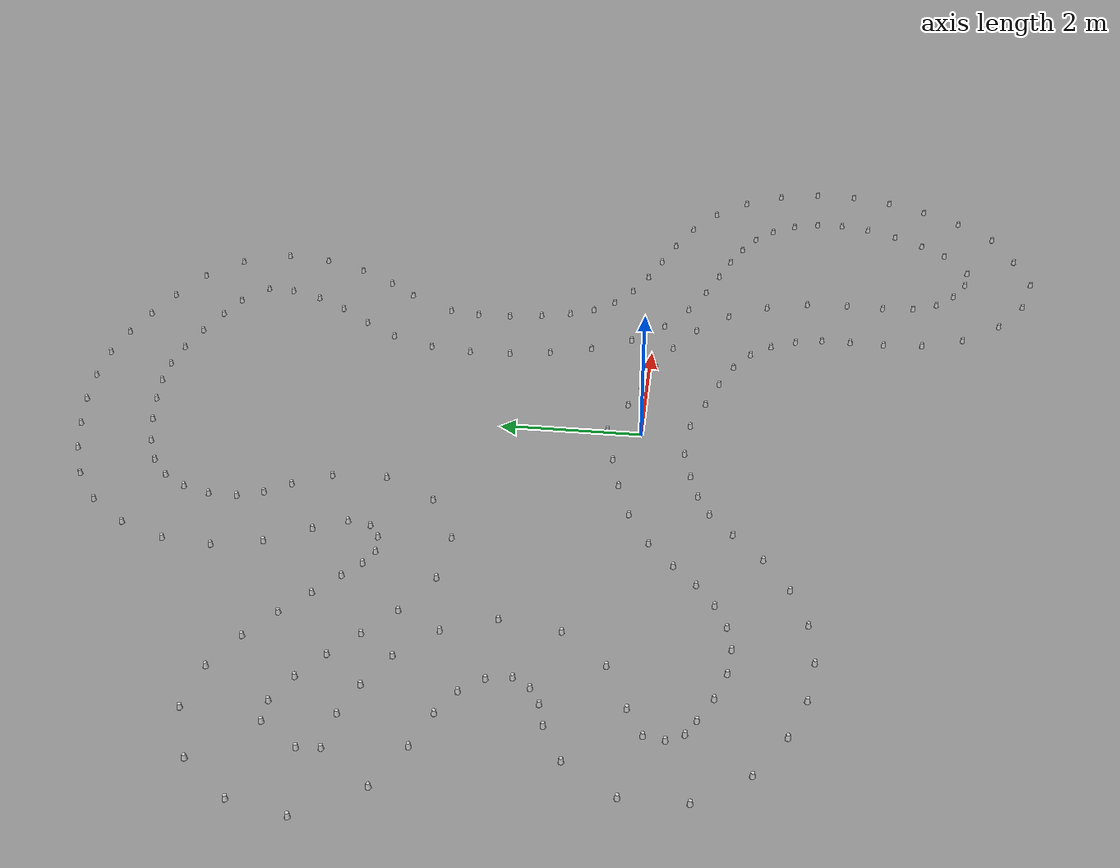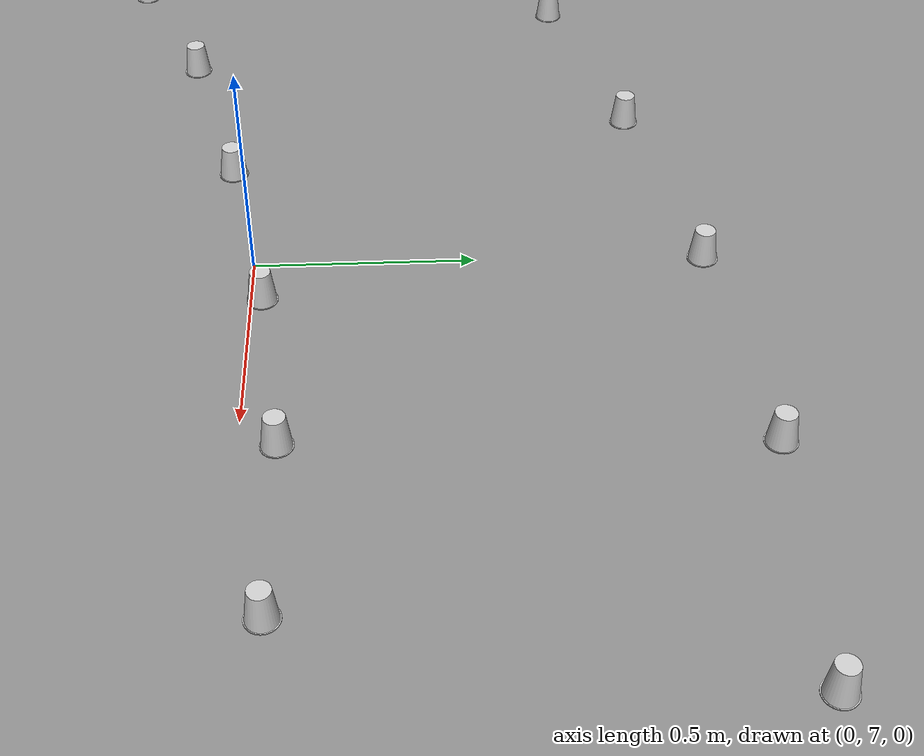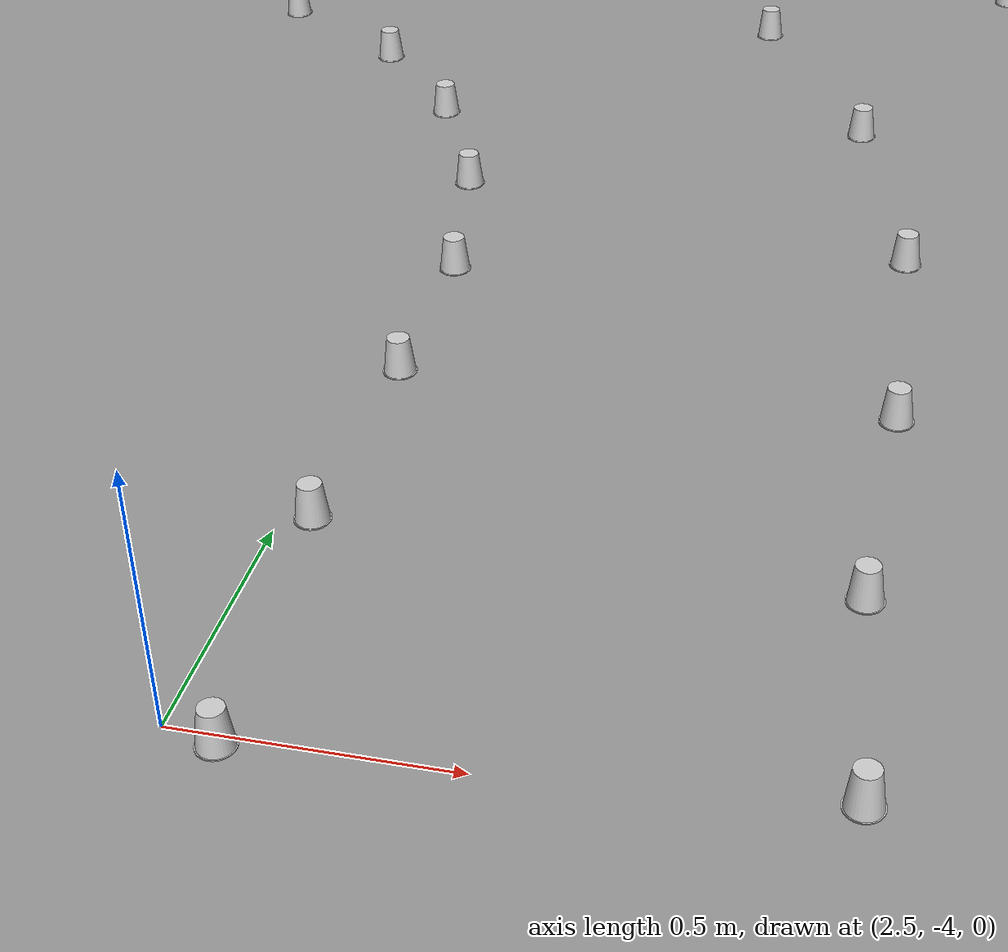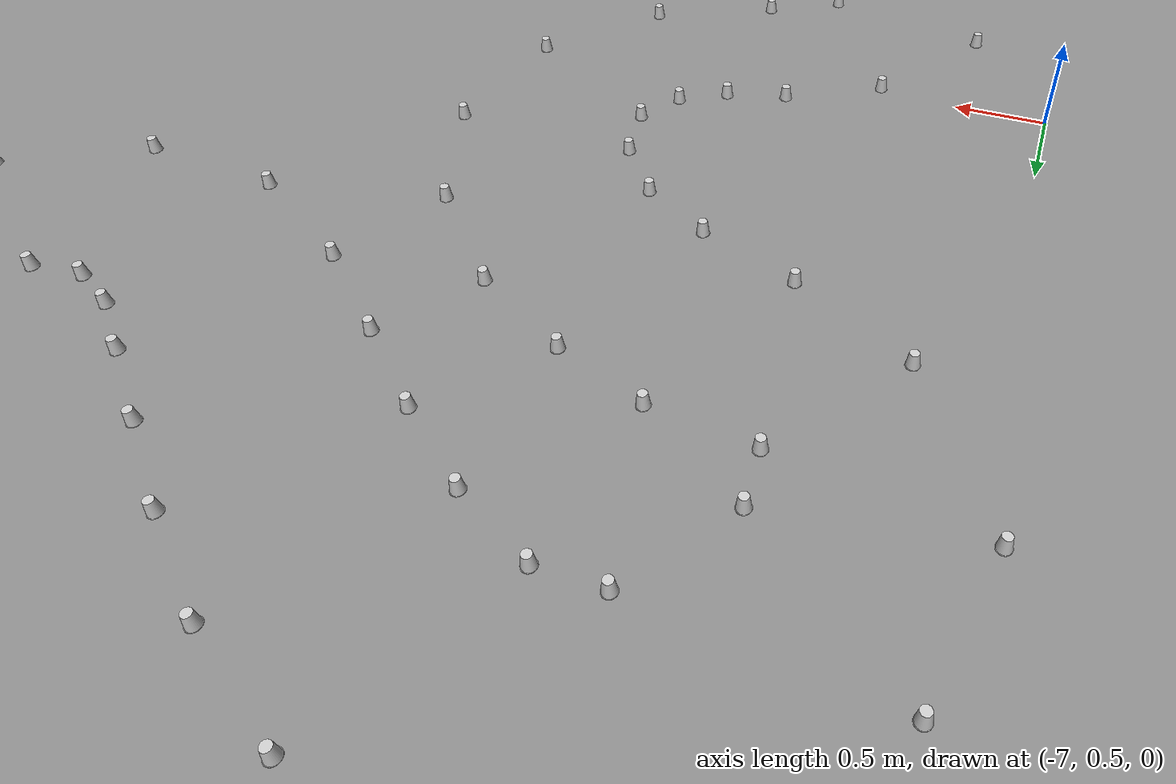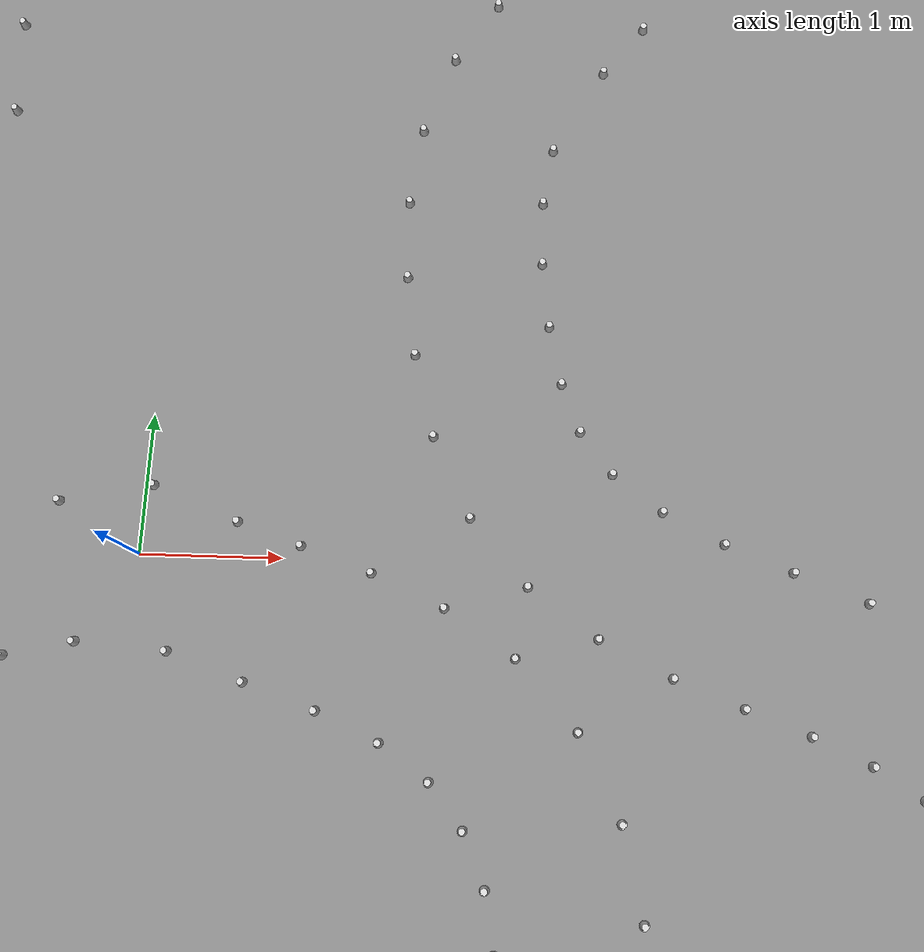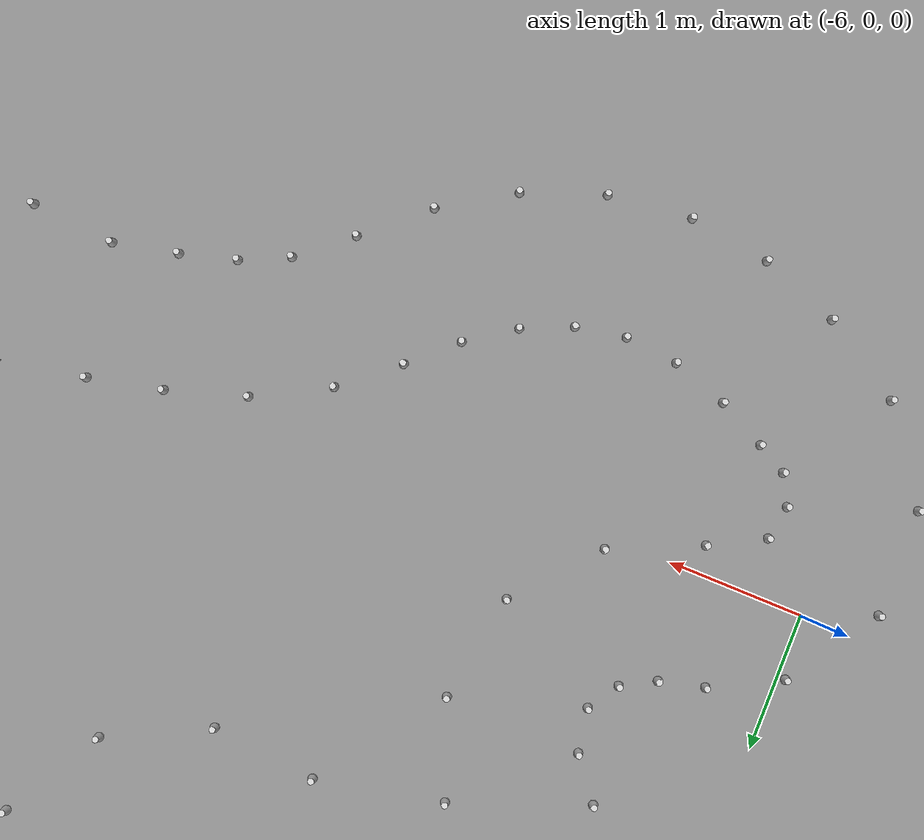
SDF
<?xml version='1.0' encoding='UTF-8'?>
<sdf version="1.4">
  <model name="some track">
    <include>
      <uri>model://cone_yellow</uri>
      <pose>0.2520217819571229 -0.6624473899788152 0 0 0 0</pose>
      <name>cone_right_0</name>
    </include>
    <include>
      <uri>model://cone_yellow</uri>
      <pose>0.7920641957585527 -0.8517499490400444 0 0 0 0</pose>
      <name>cone_right_1</name>
    </include>
    <include>
      <uri>model://cone_yellow</uri>
      <pose>1.299191915145787 -1.0262613820111453 0 0 0 0</pose>
      <name>cone_right_2</name>
    </include>
    <include>
      <uri>model://cone_yellow</uri>
      <pose>1.7433202364652647 -1.222958055781142 0 0 0 0</pose>
      <name>cone_right_3</name>
    </include>
    <include>
      <uri>model://cone_yellow</uri>
      <pose>2.093068507529238 -1.4657872968968744 0 0 0 0</pose>
      <name>cone_right_4</name>
    </include>
    <include>
      <uri>model://cone_yellow</uri>
      <pose>2.3342759258822703 -1.7679930261638694 0 0 0 0</pose>
      <name>cone_right_5</name>
    </include>
    <include>
      <uri>model://cone_yellow</uri>
      <pose>2.4956350962559144 -2.1334000531033883 0 0 0 0</pose>
      <name>cone_right_6</name>
    </include>
    <include>
      <uri>model://cone_yellow</uri>
      <pose>2.5694315664643734 -2.5307443159718352 0 0 0 0</pose>
      <name>cone_right_7</name>
    </include>
    <include>
      <uri>model://cone_yellow</uri>
      <pose>2.5705801043149012 -2.9509575145704634 0 0 0 0</pose>
      <name>cone_right_8</name>
    </include>
    <include>
      <uri>model://cone_yellow</uri>
      <pose>2.557541530749565 -3.4488771724624128 0 0 0 0</pose>
      <name>cone_right_9</name>
    </include>
    <include>
      <uri>model://cone_yellow</uri>
      <pose>2.599263658524519 -4.021047269651951 0 0 0 0</pose>
      <name>cone_right_10</name>
    </include>
    <include>
      <uri>model://cone_yellow</uri>
      <pose>2.7983585120659815 -4.640167343882475 0 0 0 0</pose>
      <name>cone_right_11</name>
    </include>
    <include>
      <uri>model://cone_yellow</uri>
      <pose>3.2318226153511267 -5.219282504682011 0 0 0 0</pose>
      <name>cone_right_12</name>
    </include>
    <include>
      <uri>model://cone_yellow</uri>
      <pose>3.812850258351517 -5.629514881877997 0 0 0 0</pose>
      <name>cone_right_13</name>
    </include>
    <include>
      <uri>model://cone_yellow</uri>
      <pose>4.477135023608905 -5.825263475074449 0 0 0 0</pose>
      <name>cone_right_14</name>
    </include>
    <include>
      <uri>model://cone_yellow</uri>
      <pose>5.796108552447984 -5.339663908365842 0 0 0 0</pose>
      <name>cone_right_15</name>
    </include>
    <include>
      <uri>model://cone_yellow</uri>
      <pose>6.24854381011139 -4.823935224112341 0 0 0 0</pose>
      <name>cone_right_16</name>
    </include>
    <include>
      <uri>model://cone_yellow</uri>
      <pose>6.585228923449826 -4.276536982010912 0 0 0 0</pose>
      <name>cone_right_17</name>
    </include>
    <include>
      <uri>model://cone_yellow</uri>
      <pose>6.829403236017571 -3.711334931807733 0 0 0 0</pose>
      <name>cone_right_18</name>
    </include>
    <include>
      <uri>model://cone_yellow</uri>
      <pose>6.973064333869849 -3.1179742687386343 0 0 0 0</pose>
      <name>cone_right_19</name>
    </include>
    <include>
      <uri>model://cone_yellow</uri>
      <pose>6.992263410201457 -2.5016879120651843 0 0 0 0</pose>
      <name>cone_right_20</name>
    </include>
    <include>
      <uri>model://cone_yellow</uri>
      <pose>6.860998882554905 -1.8780927560607965 0 0 0 0</pose>
      <name>cone_right_21</name>
    </include>
    <include>
      <uri>model://cone_yellow</uri>
      <pose>6.576949663200294 -1.2961196481319779 0 0 0 0</pose>
      <name>cone_right_22</name>
    </include>
    <include>
      <uri>model://cone_yellow</uri>
      <pose>6.154562059435189 -0.8044108175015665 0 0 0 0</pose>
      <name>cone_right_23</name>
    </include>
    <include>
      <uri>model://cone_yellow</uri>
      <pose>5.631007172851125 -0.4348953182741404 0 0 0 0</pose>
      <name>cone_right_24</name>
    </include>
    <include>
      <uri>model://cone_yellow</uri>
      <pose>5.087319439940173 -0.1768135656190289 0 0 0 0</pose>
      <name>cone_right_25</name>
    </include>
    <include>
      <uri>model://cone_yellow</uri>
      <pose>4.568368015731414 0.01836215299985644 0 0 0 0</pose>
      <name>cone_right_26</name>
    </include>
    <include>
      <uri>model://cone_yellow</uri>
      <pose>4.088211933029131 0.20159445764849143 0 0 0 0</pose>
      <name>cone_right_27</name>
    </include>
    <include>
      <uri>model://cone_yellow</uri>
      <pose>3.6540359549768677 0.41498832790473933 0 0 0 0</pose>
      <name>cone_right_28</name>
    </include>
    <include>
      <uri>model://cone_yellow</uri>
      <pose>3.2959722058506964 0.6753324073915663 0 0 0 0</pose>
      <name>cone_right_29</name>
    </include>
    <include>
      <uri>model://cone_yellow</uri>
      <pose>3.059899477813197 0.9769999139014358 0 0 0 0</pose>
      <name>cone_right_30</name>
    </include>
    <include>
      <uri>model://cone_yellow</uri>
      <pose>2.9179184346572002 1.3289481860374015 0 0 0 0</pose>
      <name>cone_right_31</name>
    </include>
    <include>
      <uri>model://cone_yellow</uri>
      <pose>2.8171298548565704 1.7610974588574992 0 0 0 0</pose>
      <name>cone_right_32</name>
    </include>
    <include>
      <uri>model://cone_yellow</uri>
      <pose>2.752486098595374 2.24906895680662 0 0 0 0</pose>
      <name>cone_right_33</name>
    </include>
    <include>
      <uri>model://cone_yellow</uri>
      <pose>2.7441923727782984 2.732648959672725 0 0 0 0</pose>
      <name>cone_right_34</name>
    </include>
    <include>
      <uri>model://cone_yellow</uri>
      <pose>2.8094911777625695 3.169121524910929 0 0 0 0</pose>
      <name>cone_right_35</name>
    </include>
    <include>
      <uri>model://cone_yellow</uri>
      <pose>3.1794053025569933 3.8375906705280376 0 0 0 0</pose>
      <name>cone_right_36</name>
    </include>
    <include>
      <uri>model://cone_yellow</uri>
      <pose>3.4831603157119084 4.2298579298097465 0 0 0 0</pose>
      <name>cone_right_37</name>
    </include>
    <include>
      <uri>model://cone_yellow</uri>
      <pose>3.809205175074379 4.765881341581956 0 0 0 0</pose>
      <name>cone_right_38</name>
    </include>
    <include>
      <uri>model://cone_yellow</uri>
      <pose>4.049266905964703 5.388396235913045 0 0 0 0</pose>
      <name>cone_right_39</name>
    </include>
    <include>
      <uri>model://cone_yellow</uri>
      <pose>4.1255727304579475 6.040424915852865 0 0 0 0</pose>
      <name>cone_right_40</name>
    </include>
    <include>
      <uri>model://cone_yellow</uri>
      <pose>3.4073580081205925 7.231790161190017 0 0 0 0</pose>
      <name>cone_right_41</name>
    </include>
    <include>
      <uri>model://cone_yellow</uri>
      <pose>2.8071667317902715 7.545954666888268 0 0 0 0</pose>
      <name>cone_right_42</name>
    </include>
    <include>
      <uri>model://cone_yellow</uri>
      <pose>2.2636614347864916 7.766770100152271 0 0 0 0</pose>
      <name>cone_right_43</name>
    </include>
    <include>
      <uri>model://cone_yellow</uri>
      <pose>1.7389775275840862 7.940699372667505 0 0 0 0</pose>
      <name>cone_right_44</name>
    </include>
    <include>
      <uri>model://cone_yellow</uri>
      <pose>1.1860080670676953 8.053940320622587 0 0 0 0</pose>
      <name>cone_right_45</name>
    </include>
    <include>
      <uri>model://cone_yellow</uri>
      <pose>0.5978364034005021 8.077888732765958 0 0 0 0</pose>
      <name>cone_right_46</name>
    </include>
    <include>
      <uri>model://cone_yellow</uri>
      <pose>0.012944138961579615 8.019446888176086 0 0 0 0</pose>
      <name>cone_right_47</name>
    </include>
    <include>
      <uri>model://cone_yellow</uri>
      <pose>-0.5508445509962474 7.911445193115536 0 0 0 0</pose>
      <name>cone_right_48</name>
    </include>
    <include>
      <uri>model://cone_yellow</uri>
      <pose>-1.098455705147647 7.767283299713167 0 0 0 0</pose>
      <name>cone_right_49</name>
    </include>
    <include>
      <uri>model://cone_yellow</uri>
      <pose>-1.6432806461404748 7.542754481045314 0 0 0 0</pose>
      <name>cone_right_50</name>
    </include>
    <include>
      <uri>model://cone_yellow</uri>
      <pose>-2.1572893378789066 7.17823507612972 0 0 0 0</pose>
      <name>cone_right_51</name>
    </include>
    <include>
      <uri>model://cone_yellow</uri>
      <pose>-2.5712632944666423 6.655868996854599 0 0 0 0</pose>
      <name>cone_right_52</name>
    </include>
    <include>
      <uri>model://cone_yellow</uri>
      <pose>-2.824064407151414 6.037645054125132 0 0 0 0</pose>
      <name>cone_right_53</name>
    </include>
    <include>
      <uri>model://cone_yellow</uri>
      <pose>-2.89384628863201 5.371641314937135 0 0 0 0</pose>
      <name>cone_right_54</name>
    </include>
    <include>
      <uri>model://cone_yellow</uri>
      <pose>-2.756995482883776 4.711567929978764 0 0 0 0</pose>
      <name>cone_right_55</name>
    </include>
    <include>
      <uri>model://cone_yellow</uri>
      <pose>-2.4519347591403267 4.13197346670537 0 0 0 0</pose>
      <name>cone_right_56</name>
    </include>
    <include>
      <uri>model://cone_yellow</uri>
      <pose>-2.2590964563727955 3.7007405896481314 0 0 0 0</pose>
      <name>cone_right_57</name>
    </include>
    <include>
      <uri>model://cone_yellow</uri>
      <pose>-2.312920979582919 3.390964992583986 0 0 0 0</pose>
      <name>cone_right_58</name>
    </include>
    <include>
      <uri>model://cone_yellow</uri>
      <pose>-2.5258126894514894 3.249695831637959 0 0 0 0</pose>
      <name>cone_right_59</name>
    </include>
    <include>
      <uri>model://cone_yellow</uri>
      <pose>-2.808412626437026 3.2256050557428155 0 0 0 0</pose>
      <name>cone_right_60</name>
    </include>
    <include>
      <uri>model://cone_yellow</uri>
      <pose>-3.046176787506559 3.342783024524836 0 0 0 0</pose>
      <name>cone_right_61</name>
    </include>
    <include>
      <uri>model://cone_yellow</uri>
      <pose>-3.2992772649814377 3.560173581340999 0 0 0 0</pose>
      <name>cone_right_62</name>
    </include>
    <include>
      <uri>model://cone_yellow</uri>
      <pose>-3.6474310826138368 3.8617094937769947 0 0 0 0</pose>
      <name>cone_right_63</name>
    </include>
    <include>
      <uri>model://cone_yellow</uri>
      <pose>-4.03312819398742 4.193759264655865 0 0 0 0</pose>
      <name>cone_right_64</name>
    </include>
    <include>
      <uri>model://cone_yellow</uri>
      <pose>-4.478922136011895 4.531394360107891 0 0 0 0</pose>
      <name>cone_right_65</name>
    </include>
    <include>
      <uri>model://cone_yellow</uri>
      <pose>-5.019083513537241 4.827296796565821 0 0 0 0</pose>
      <name>cone_right_66</name>
    </include>
    <include>
      <uri>model://cone_yellow</uri>
      <pose>-5.696571670135376 4.940759099829963 0 0 0 0</pose>
      <name>cone_right_67</name>
    </include>
    <include>
      <uri>model://cone_yellow</uri>
      <pose>-6.4419897095029 4.66419950098626 0 0 0 0</pose>
      <name>cone_right_68</name>
    </include>
    <include>
      <uri>model://cone_yellow</uri>
      <pose>-6.965292541431702 4.052509621536886 0 0 0 0</pose>
      <name>cone_right_69</name>
    </include>
    <include>
      <uri>model://cone_yellow</uri>
      <pose>-7.132385436221496 3.3152390506095673 0 0 0 0</pose>
      <name>cone_right_70</name>
    </include>
    <include>
      <uri>model://cone_yellow</uri>
      <pose>-6.015064444576806 2.193923867054709 0 0 0 0</pose>
      <name>cone_right_71</name>
    </include>
    <include>
      <uri>model://cone_yellow</uri>
      <pose>-5.489376206754088 1.9940529820541484 0 0 0 0</pose>
      <name>cone_right_72</name>
    </include>
    <include>
      <uri>model://cone_yellow</uri>
      <pose>-5.121509317311876 1.7779283719941044 0 0 0 0</pose>
      <name>cone_right_73</name>
    </include>
    <include>
      <uri>model://cone_yellow</uri>
      <pose>-4.890808167404767 1.4857557992234296 0 0 0 0</pose>
      <name>cone_right_74</name>
    </include>
    <include>
      <uri>model://cone_yellow</uri>
      <pose>-4.835471105562516 1.16856310299713 0 0 0 0</pose>
      <name>cone_right_75</name>
    </include>
    <include>
      <uri>model://cone_yellow</uri>
      <pose>-4.981671212254161 0.9434112924375545 0 0 0 0</pose>
      <name>cone_right_76</name>
    </include>
    <include>
      <uri>model://cone_yellow</uri>
      <pose>-5.225957235066279 0.8055602484742517 0 0 0 0</pose>
      <name>cone_right_77</name>
    </include>
    <include>
      <uri>model://cone_yellow</uri>
      <pose>-5.553883189313682 0.7205217464326452 0 0 0 0</pose>
      <name>cone_right_78</name>
    </include>
    <include>
      <uri>model://cone_yellow</uri>
      <pose>-6.05790994172487 0.4554604930074829 0 0 0 0</pose>
      <name>cone_right_79</name>
    </include>
    <include>
      <uri>model://cone_yellow</uri>
      <pose>-6.511753547478928 -0.21399241389830667 0 0 0 0</pose>
      <name>cone_right_80</name>
    </include>
    <include>
      <uri>model://cone_yellow</uri>
      <pose>-6.511592226771449 -1.0141842864731543 0 0 0 0</pose>
      <name>cone_right_81</name>
    </include>
    <include>
      <uri>model://cone_yellow</uri>
      <pose>-6.048732876911091 -1.6828417659862929 0 0 0 0</pose>
      <name>cone_right_82</name>
    </include>
    <include>
      <uri>model://cone_yellow</uri>
      <pose>-5.444711102965976 -2.071015162418846 0 0 0 0</pose>
      <name>cone_right_83</name>
    </include>
    <include>
      <uri>model://cone_yellow</uri>
      <pose>-4.852782722712153 -2.2925823177206306 0 0 0 0</pose>
      <name>cone_right_84</name>
    </include>
    <include>
      <uri>model://cone_yellow</uri>
      <pose>-4.235820939976103 -2.3802605939143713 0 0 0 0</pose>
      <name>cone_right_85</name>
    </include>
    <include>
      <uri>model://cone_yellow</uri>
      <pose>-3.600049028525435 -2.3081352613558472 0 0 0 0</pose>
      <name>cone_right_86</name>
    </include>
    <include>
      <uri>model://cone_yellow</uri>
      <pose>-2.9969432158173577 -2.0807944631179898 0 0 0 0</pose>
      <name>cone_right_87</name>
    </include>
    <include>
      <uri>model://cone_yellow</uri>
      <pose>-2.4654917920433816 -1.738450509694465 0 0 0 0</pose>
      <name>cone_right_88</name>
    </include>
    <include>
      <uri>model://cone_yellow</uri>
      <pose>-2.0181808849243184 -1.3350987166364123 0 0 0 0</pose>
      <name>cone_right_89</name>
    </include>
    <include>
      <uri>model://cone_yellow</uri>
      <pose>-1.6425923393042563 -1.0136231073497095 0 0 0 0</pose>
      <name>cone_right_90</name>
    </include>
    <include>
      <uri>model://cone_yellow</uri>
      <pose>-1.286857373238095 -0.8437133021744048 0 0 0 0</pose>
      <name>cone_right_91</name>
    </include>
    <include>
      <uri>model://cone_yellow</uri>
      <pose>-0.8707226521912054 -0.725576379343821 0 0 0 0</pose>
      <name>cone_right_92</name>
    </include>
    <include>
      <uri>model://cone_yellow</uri>
      <pose>-0.38843332985563606 -0.6169974470621513 0 0 0 0</pose>
      <name>cone_right_93</name>
    </include>
    <include>
      <uri>model://cone_yellow</uri>
      <pose>3.874886544834588 6.74167823677157 0 0 0 0</pose>
      <name>cone_right_94</name>
    </include>
    <include>
      <uri>model://cone_yellow</uri>
      <pose>5.134630091375371 -5.629649412590609 0 0 0 0</pose>
      <name>cone_right_95</name>
    </include>
    <include>
      <uri>model://cone_yellow</uri>
      <pose>-6.639126901294375 2.526382523346598 0 0 0 0</pose>
      <name>cone_right_96</name>
    </include>
    <include>
      <uri>model://cone_blue</uri>
      <pose>0.663619853931519 0.24891808399249987 0 0 0 0</pose>
      <name>cone_left_0</name>
    </include>
    <include>
      <uri>model://cone_blue</uri>
      <pose>1.1194752901665295 0.0931320410828338 0 0 0 0</pose>
      <name>cone_left_1</name>
    </include>
    <include>
      <uri>model://cone_blue</uri>
      <pose>1.6245802753715715 -0.0806809174130364 0 0 0 0</pose>
      <name>cone_left_2</name>
    </include>
    <include>
      <uri>model://cone_blue</uri>
      <pose>2.1450981536082447 -0.3072209181175826 0 0 0 0</pose>
      <name>cone_left_3</name>
    </include>
    <include>
      <uri>model://cone_blue</uri>
      <pose>2.6484882174723348 -0.6342171279954605 0 0 0 0</pose>
      <name>cone_left_4</name>
    </include>
    <include>
      <uri>model://cone_blue</uri>
      <pose>3.087198247944624 -1.1098836302878996 0 0 0 0</pose>
      <name>cone_left_5</name>
    </include>
    <include>
      <uri>model://cone_blue</uri>
      <pose>3.392567902044852 -1.6912331820020081 0 0 0 0</pose>
      <name>cone_left_6</name>
    </include>
    <include>
      <uri>model://cone_blue</uri>
      <pose>3.5455786373051974 -2.3136339843685696 0 0 0 0</pose>
      <name>cone_left_7</name>
    </include>
    <include>
      <uri>model://cone_blue</uri>
      <pose>3.570267168986838 -2.925942064792231 0 0 0 0</pose>
      <name>cone_left_8</name>
    </include>
    <include>
      <uri>model://cone_blue</uri>
      <pose>3.5572308373700663 -3.4738028666076177 0 0 0 0</pose>
      <name>cone_left_9</name>
    </include>
    <include>
      <uri>model://cone_blue</uri>
      <pose>3.5962740713773105 -3.9437799630915027 0 0 0 0</pose>
      <name>cone_left_10</name>
    </include>
    <include>
      <uri>model://cone_blue</uri>
      <pose>3.7421473334922415 -4.309618314915771 0 0 0 0</pose>
      <name>cone_left_11</name>
    </include>
    <include>
      <uri>model://cone_blue</uri>
      <pose>4.00706141946418 -4.587614240007141 0 0 0 0</pose>
      <name>cone_left_12</name>
    </include>
    <include>
      <uri>model://cone_blue</uri>
      <pose>4.362865972255532 -4.794360576100521 0 0 0 0</pose>
      <name>cone_left_13</name>
    </include>
    <include>
      <uri>model://cone_blue</uri>
      <pose>4.720775394692484 -4.855397829957427 0 0 0 0</pose>
      <name>cone_left_14</name>
    </include>
    <include>
      <uri>model://cone_blue</uri>
      <pose>5.213292677155343 -4.527059665510273 0 0 0 0</pose>
      <name>cone_left_15</name>
    </include>
    <include>
      <uri>model://cone_blue</uri>
      <pose>5.481903407506283 -4.1818585206777135 0 0 0 0</pose>
      <name>cone_left_16</name>
    </include>
    <include>
      <uri>model://cone_blue</uri>
      <pose>5.728591635985545 -3.760617843263532 0 0 0 0</pose>
      <name>cone_left_17</name>
    </include>
    <include>
      <uri>model://cone_blue</uri>
      <pose>5.9081716068602095 -3.322320426371145 0 0 0 0</pose>
      <name>cone_left_18</name>
    </include>
    <include>
      <uri>model://cone_blue</uri>
      <pose>5.998295302461977 -2.8947583745730077 0 0 0 0</pose>
      <name>cone_left_19</name>
    </include>
    <include>
      <uri>model://cone_blue</uri>
      <pose>5.992347405043616 -2.4887271007794465 0 0 0 0</pose>
      <name>cone_left_20</name>
    </include>
    <include>
      <uri>model://cone_blue</uri>
      <pose>5.887477089852674 -2.106686979815106 0 0 0 0</pose>
      <name>cone_left_21</name>
    </include>
    <include>
      <uri>model://cone_blue</uri>
      <pose>5.688789241005452 -1.7556531773185675 0 0 0 0</pose>
      <name>cone_left_22</name>
    </include>
    <include>
      <uri>model://cone_blue</uri>
      <pose>5.4128543141900325 -1.4751340246767375 0 0 0 0</pose>
      <name>cone_left_23</name>
    </include>
    <include>
      <uri>model://cone_blue</uri>
      <pose>5.07344024996265 -1.265027311694872 0 0 0 0</pose>
      <name>cone_left_24</name>
    </include>
    <include>
      <uri>model://cone_blue</uri>
      <pose>4.66794772080518 -1.0846281728983789 0 0 0 0</pose>
      <name>cone_left_25</name>
    </include>
    <include>
      <uri>model://cone_blue</uri>
      <pose>4.2187570831315675 -0.9185328228681248 0 0 0 0</pose>
      <name>cone_left_26</name>
    </include>
    <include>
      <uri>model://cone_blue</uri>
      <pose>3.731704916341431 -0.7326981876465659 0 0 0 0</pose>
      <name>cone_left_27</name>
    </include>
    <include>
      <uri>model://cone_blue</uri>
      <pose>3.2165560733644902 -0.48423987071028424 0 0 0 0</pose>
      <name>cone_left_28</name>
    </include>
    <include>
      <uri>model://cone_blue</uri>
      <pose>2.719808717700243 -0.14200206204080912 0 0 0 0</pose>
      <name>cone_left_29</name>
    </include>
    <include>
      <uri>model://cone_blue</uri>
      <pose>2.2983753020940916 0.32886340837552647 0 0 0 0</pose>
      <name>cone_left_30</name>
    </include>
    <include>
      <uri>model://cone_blue</uri>
      <pose>2.009882604486351 0.9100556805829147 0 0 0 0</pose>
      <name>cone_left_31</name>
    </include>
    <include>
      <uri>model://cone_blue</uri>
      <pose>1.8477649155832705 1.5154725120225507 0 0 0 0</pose>
      <name>cone_left_32</name>
    </include>
    <include>
      <uri>model://cone_blue</uri>
      <pose>1.7619763223746618 2.1116266663309613 0 0 0 0</pose>
      <name>cone_left_33</name>
    </include>
    <include>
      <uri>model://cone_blue</uri>
      <pose>1.7444770439206392 2.7087897633949267 0 0 0 0</pose>
      <name>cone_left_34</name>
    </include>
    <include>
      <uri>model://cone_blue</uri>
      <pose>1.8185030505202517 3.3030712605014245 0 0 0 0</pose>
      <name>cone_left_35</name>
    </include>
    <include>
      <uri>model://cone_blue</uri>
      <pose>2.349560015211758 4.395584218045304 0 0 0 0</pose>
      <name>cone_left_36</name>
    </include>
    <include>
      <uri>model://cone_blue</uri>
      <pose>2.691205005792843 4.840436988647337 0 0 0 0</pose>
      <name>cone_left_37</name>
    </include>
    <include>
      <uri>model://cone_blue</uri>
      <pose>2.9520897332085068 5.2810057142484705 0 0 0 0</pose>
      <name>cone_left_38</name>
    </include>
    <include>
      <uri>model://cone_blue</uri>
      <pose>3.1116655717401818 5.736108384191472 0 0 0 0</pose>
      <name>cone_left_39</name>
    </include>
    <include>
      <uri>model://cone_blue</uri>
      <pose>3.1296068034982083 6.130157141587144 0 0 0 0</pose>
      <name>cone_left_40</name>
    </include>
    <include>
      <uri>model://cone_blue</uri>
      <pose>2.7574949962762307 6.471738803822256 0 0 0 0</pose>
      <name>cone_left_41</name>
    </include>
    <include>
      <uri>model://cone_blue</uri>
      <pose>2.3634935654574063 6.649766002891579 0 0 0 0</pose>
      <name>cone_left_42</name>
    </include>
    <include>
      <uri>model://cone_blue</uri>
      <pose>1.8895565802605394 6.839383687797574 0 0 0 0</pose>
      <name>cone_left_43</name>
    </include>
    <include>
      <uri>model://cone_blue</uri>
      <pose>1.4261504520324502 6.990889275436584 0 0 0 0</pose>
      <name>cone_left_44</name>
    </include>
    <include>
      <uri>model://cone_blue</uri>
      <pose>0.9919295455595617 7.072954323021593 0 0 0 0</pose>
      <name>cone_left_45</name>
    </include>
    <include>
      <uri>model://cone_blue</uri>
      <pose>0.568871571684888 7.078308301523086 0 0 0 0</pose>
      <name>cone_left_46</name>
    </include>
    <include>
      <uri>model://cone_blue</uri>
      <pose>0.12023398828685711 7.02521910329389 0 0 0 0</pose>
      <name>cone_left_47</name>
    </include>
    <include>
      <uri>model://cone_blue</uri>
      <pose>-0.3596202025431079 6.92989883732857 0 0 0 0</pose>
      <name>cone_left_48</name>
    </include>
    <include>
      <uri>model://cone_blue</uri>
      <pose>-0.8419591901350734 6.800738144127353 0 0 0 0</pose>
      <name>cone_left_49</name>
    </include>
    <include>
      <uri>model://cone_blue</uri>
      <pose>-1.2546175908889339 6.621374521700345 0 0 0 0</pose>
      <name>cone_left_50</name>
    </include>
    <include>
      <uri>model://cone_blue</uri>
      <pose>-1.5603381958437554 6.375957484505145 0 0 0 0</pose>
      <name>cone_left_51</name>
    </include>
    <include>
      <uri>model://cone_blue</uri>
      <pose>-1.7680898057646548 6.0601237937297405 0 0 0 0</pose>
      <name>cone_left_52</name>
    </include>
    <include>
      <uri>model://cone_blue</uri>
      <pose>-1.8878940938288575 5.6860982656978365 0 0 0 0</pose>
      <name>cone_left_53</name>
    </include>
    <include>
      <uri>model://cone_blue</uri>
      <pose>-1.8966042064673219 5.297423867124393 0 0 0 0</pose>
      <name>cone_left_54</name>
    </include>
    <include>
      <uri>model://cone_blue</uri>
      <pose>-1.7858955262277605 4.950241083439066 0 0 0 0</pose>
      <name>cone_left_55</name>
    </include>
    <include>
      <uri>model://cone_blue</uri>
      <pose>-1.5803885853374176 4.622286904140557 0 0 0 0</pose>
      <name>cone_left_56</name>
    </include>
    <include>
      <uri>model://cone_blue</uri>
      <pose>-1.3478880604354369 4.112686288949951 0 0 0 0</pose>
      <name>cone_left_57</name>
    </include>
    <include>
      <uri>model://cone_blue</uri>
      <pose>-1.3130851506283083 3.372845524086083 0 0 0 0</pose>
      <name>cone_left_58</name>
    </include>
    <include>
      <uri>model://cone_blue</uri>
      <pose>-1.715638746842513 2.6635062865952084 0 0 0 0</pose>
      <name>cone_left_59</name>
    </include>
    <include>
      <uri>model://cone_blue</uri>
      <pose>-2.44590210174661 2.293625378127108 0 0 0 0</pose>
      <name>cone_left_60</name>
    </include>
    <include>
      <uri>model://cone_blue</uri>
      <pose>-3.2227828143049186 2.358501402579929 0 0 0 0</pose>
      <name>cone_left_61</name>
    </include>
    <include>
      <uri>model://cone_blue</uri>
      <pose>-3.852332688631308 2.7270291170543652 0 0 0 0</pose>
      <name>cone_left_62</name>
    </include>
    <include>
      <uri>model://cone_blue</uri>
      <pose>-4.296201573107299 3.1007253607854643 0 0 0 0</pose>
      <name>cone_left_63</name>
    </include>
    <include>
      <uri>model://cone_blue</uri>
      <pose>-4.6855543592827535 3.4359069711065047 0 0 0 0</pose>
      <name>cone_left_64</name>
    </include>
    <include>
      <uri>model://cone_blue</uri>
      <pose>-5.081200422293418 3.7331081546190377 0 0 0 0</pose>
      <name>cone_left_65</name>
    </include>
    <include>
      <uri>model://cone_blue</uri>
      <pose>-5.490973289701435 3.9456392444790103 0 0 0 0</pose>
      <name>cone_left_66</name>
    </include>
    <include>
      <uri>model://cone_blue</uri>
      <pose>-5.811247622256977 3.947356147345421 0 0 0 0</pose>
      <name>cone_left_67</name>
    </include>
    <include>
      <uri>model://cone_blue</uri>
      <pose>-6.161998338850775 3.456927197266432 0 0 0 0</pose>
      <name>cone_left_68</name>
    </include>
    <include>
      <uri>model://cone_blue</uri>
      <pose>-6.1426764147368225 3.172144491691866 0 0 0 0</pose>
      <name>cone_left_69</name>
    </include>
    <include>
      <uri>model://cone_blue</uri>
      <pose>-5.610757311653032 3.1085471459334815 0 0 0 0</pose>
      <name>cone_left_70</name>
    </include>
    <include>
      <uri>model://cone_blue</uri>
      <pose>-5.135209047499721 2.929235115815103 0 0 0 0</pose>
      <name>cone_left_71</name>
    </include>
    <include>
      <uri>model://cone_blue</uri>
      <pose>-4.627133477224957 2.647176626946827 0 0 0 0</pose>
      <name>cone_left_72</name>
    </include>
    <include>
      <uri>model://cone_blue</uri>
      <pose>-4.149471835332063 2.156889498831033 0 0 0 0</pose>
      <name>cone_left_73</name>
    </include>
    <include>
      <uri>model://cone_blue</uri>
      <pose>-3.883468995720096 1.4746545645826823 0 0 0 0</pose>
      <name>cone_left_74</name>
    </include>
    <include>
      <uri>model://cone_blue</uri>
      <pose>-4.017289846574219 0.6788955433236542 0 0 0 0</pose>
      <name>cone_left_75</name>
    </include>
    <include>
      <uri>model://cone_blue</uri>
      <pose>-4.532159309579743 0.0853905194585291 0 0 0 0</pose>
      <name>cone_left_76</name>
    </include>
    <include>
      <uri>model://cone_blue</uri>
      <pose>-5.193077828594351 -0.2121193912383209 0 0 0 0</pose>
      <name>cone_left_77</name>
    </include>
    <include>
      <uri>model://cone_blue</uri>
      <pose>-5.586743182200505 -0.42658365822266275 0 0 0 0</pose>
      <name>cone_left_78</name>
    </include>
    <include>
      <uri>model://cone_blue</uri>
      <pose>-5.630135715506667 -0.6859563938253035 0 0 0 0</pose>
      <name>cone_left_79</name>
    </include>
    <include>
      <uri>model://cone_blue</uri>
      <pose>-5.517652773038496 -0.9042553898488441 0 0 0 0</pose>
      <name>cone_left_80</name>
    </include>
    <include>
      <uri>model://cone_blue</uri>
      <pose>-5.293419954847396 -1.0274774476383963 0 0 0 0</pose>
      <name>cone_left_81</name>
    </include>
    <include>
      <uri>model://cone_blue</uri>
      <pose>-4.934228337382664 -1.2111271778287525 0 0 0 0</pose>
      <name>cone_left_82</name>
    </include>
    <include>
      <uri>model://cone_blue</uri>
      <pose>-4.515892832102969 -1.3510382658540534 0 0 0 0</pose>
      <name>cone_left_83</name>
    </include>
    <include>
      <uri>model://cone_blue</uri>
      <pose>-4.114672758599863 -1.3876261606262499 0 0 0 0</pose>
      <name>cone_left_84</name>
    </include>
    <include>
      <uri>model://cone_blue</uri>
      <pose>-3.7389976621665517 -1.317835671731946 0 0 0 0</pose>
      <name>cone_left_85</name>
    </include>
    <include>
      <uri>model://cone_blue</uri>
      <pose>-3.371087188824819 -1.1534238319989145 0 0 0 0</pose>
      <name>cone_left_86</name>
    </include>
    <include>
      <uri>model://cone_blue</uri>
      <pose>-3.020933587349696 -0.90689509240293 0 0 0 0</pose>
      <name>cone_left_87</name>
    </include>
    <include>
      <uri>model://cone_blue</uri>
      <pose>-2.6951923834098594 -0.5991262776698689 0 0 0 0</pose>
      <name>cone_left_88</name>
    </include>
    <include>
      <uri>model://cone_blue</uri>
      <pose>-2.29332454195566 -0.25431579115128644 0 0 0 0</pose>
      <name>cone_left_89</name>
    </include>
    <include>
      <uri>model://cone_blue</uri>
      <pose>-1.7476575803696202 0.043790595905791596 0 0 0 0</pose>
      <name>cone_left_90</name>
    </include>
    <include>
      <uri>model://cone_blue</uri>
      <pose>-1.1623345918479642 0.23096033017109496 0 0 0 0</pose>
      <name>cone_left_91</name>
    </include>
    <include>
      <uri>model://cone_blue</uri>
      <pose>-0.6106142614097467 0.35800800607836697 0 0 0 0</pose>
      <name>cone_left_92</name>
    </include>
    <include>
      <uri>model://cone_blue</uri>
      <pose>0.04720423034523691 0.4914121789345387 0 0 0 0</pose>
      <name>cone_left_93</name>
    </include>
    <include>
      <uri>model://cone_blue</uri>
      <pose>2.0337228998903427 3.915330536199278 0 0 0 0</pose>
      <name>cone_left_94</name>
    </include>
  </model>
</sdf>

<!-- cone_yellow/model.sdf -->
<sdf version='1.4'>
  <model name="cone_yellow">
    <link name="link">
    <collision name="collision"><geometry><box><size> 0.05 0.05 0.01</size>
             </box></geometry></collision>
      <visual name="visual">
        <geometry>
          <mesh>
            <uri>model://cup.dae</uri>
            <scale>1 1 1</scale>
          </mesh>
        </geometry>
        <material>
            <script>
              <uri>model://cone_yellow/materials/scripts</uri>
              <uri>model://cone_yellow/materials/textures</uri>
              <name>cone_yellow/Image</name>
            </script>
        </material>
      </visual>
    </link>
  </model>
</sdf>

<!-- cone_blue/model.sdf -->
<sdf version='1.4'>
  <model name="cone_blue">
    <link name="link">
    <collision name="collision"><geometry><box><size> 0.05 0.05 0.01</size>
             </box></geometry></collision>
      <visual name="visual">
        <geometry>
          <mesh>
            <uri>model://cup.dae</uri>
            <scale>1 1 1</scale>
          </mesh>
        </geometry>
        <material>
            <script>
              <uri>model://cone_blue/materials/scripts</uri>
              <uri>model://cone_blue/materials/textures</uri>
              <name>cone_blue/Image</name>
            </script>
        </material>
      </visual>
    </link>
  </model>
</sdf>
